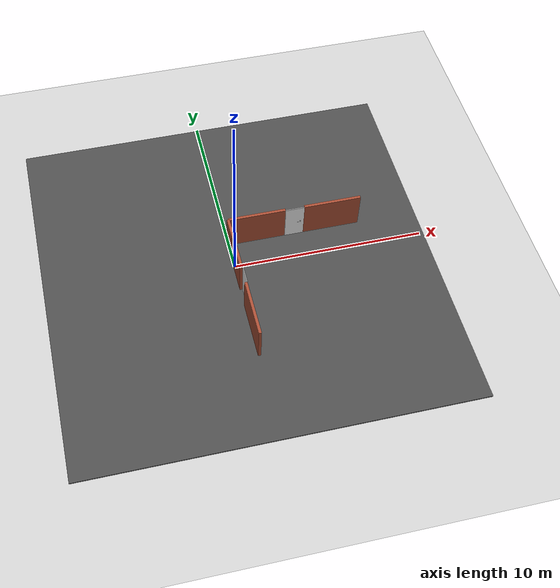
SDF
<sdf version='1.7'>
  <world name='default'>
    <light name='sun' type='directional'>
      <cast_shadows>1</cast_shadows>
      <pose>0 0 10 0 -0 0</pose>
      <diffuse>0.8 0.8 0.8 1</diffuse>
      <specular>0.2 0.2 0.2 1</specular>
      <attenuation>
        <range>1000</range>
        <constant>0.9</constant>
        <linear>0.01</linear>
        <quadratic>0.001</quadratic>
      </attenuation>
      <direction>-0.5 0.1 -0.9</direction>
      <spot>
        <inner_angle>0</inner_angle>
        <outer_angle>0</outer_angle>
        <falloff>0</falloff>
      </spot>
    </light>
    <model name='ground_plane'>
      <static>1</static>
      <link name='link'>
        <collision name='collision'>
          <geometry>
            <plane>
              <normal>0 0 1</normal>
              <size>100 100</size>
            </plane>
          </geometry>
          <surface>
            <contact>
              <collide_bitmask>65535</collide_bitmask>
              <ode/>
            </contact>
            <friction>
              <ode>
                <mu>100</mu>
                <mu2>50</mu2>
              </ode>
              <torsional>
                <ode/>
              </torsional>
            </friction>
            <bounce/>
          </surface>
          <max_contacts>10</max_contacts>
        </collision>
        <visual name='visual'>
          <cast_shadows>0</cast_shadows>
          <geometry>
            <plane>
              <normal>0 0 1</normal>
              <size>100 100</size>
            </plane>
          </geometry>
          <material>
            <script>
              <uri>file://media/materials/scripts/gazebo.material</uri>
              <name>Gazebo/Grey</name>
            </script>
          </material>
        </visual>
        <self_collide>0</self_collide>
        <enable_wind>0</enable_wind>
        <kinematic>0</kinematic>
      </link>
    </model>
    <gravity>0 0 -9.8</gravity>
    <magnetic_field>6e-06 2.3e-05 -4.2e-05</magnetic_field>
    <atmosphere type='adiabatic'/>
    <physics type='ode'>
      <max_step_size>0.001</max_step_size>
      <real_time_factor>1</real_time_factor>
      <real_time_update_rate>1000</real_time_update_rate>
    </physics>
    <scene>
      <ambient>0.4 0.4 0.4 1</ambient>
      <background>0.7 0.7 0.7 1</background>
      <shadows>1</shadows>
    </scene>
    <wind/>
    <spherical_coordinates>
      <surface_model>EARTH_WGS84</surface_model>
      <latitude_deg>0</latitude_deg>
      <longitude_deg>0</longitude_deg>
      <elevation>0</elevation>
      <heading_deg>0</heading_deg>
    </spherical_coordinates>
    <model name='asphalt_plane'>
      <static>1</static>
      <link name='link'>
        <collision name='collision'>
          <geometry>
            <box>
              <size>20 20 0.1</size>
            </box>
          </geometry>
          <max_contacts>10</max_contacts>
          <surface>
            <contact>
              <ode/>
            </contact>
            <bounce/>
            <friction>
              <torsional>
                <ode/>
              </torsional>
              <ode/>
            </friction>
          </surface>
        </collision>
        <visual name='visual'>
          <cast_shadows>0</cast_shadows>
          <geometry>
            <box>
              <size>20 20 0.1</size>
            </box>
          </geometry>
          <material>
            <script>
              <uri>model://asphalt_plane/materials/scripts</uri>
              <uri>model://asphalt_plane/materials/textures</uri>
              <name>vrc/asphalt</name>
            </script>
          </material>
        </visual>
        <self_collide>0</self_collide>
        <enable_wind>0</enable_wind>
        <kinematic>0</kinematic>
      </link>
      <pose>0.19709 -0.087615 0 0 -0 0</pose>
    </model>
    <gui fullscreen='0'>
      <camera name='user_camera'>
        <pose>0.503621 -13.69 8.1002 0 0.791312 1.61822</pose>
        <view_controller>orbit</view_controller>
        <projection_type>perspective</projection_type>
      </camera>
    </gui>
    <model name='aruco_visual_marker_7_pad'>
      <frame name='aruco_visual_marker_7::__model__' attached_to='aruco_visual_marker_7::marker'>
        <pose relative_to='__model__'>0 0 0 0 -0 0</pose>
      </frame>
      <link name='aruco_visual_marker_7::marker'>
        <pose relative_to='aruco_visual_marker_7::__model__'>0 0 0 0 -0 0</pose>
        <visual name='visual'>
          <geometry>
            <box>
              <size>0.1778 0.1778 1e-05</size>
            </box>
          </geometry>
          <material>
            <script>
              <uri>model://aruco_visual_marker_7/materials/scripts</uri>
              <uri>model://aruco_visual_marker_7/materials/textures</uri>
              <name>ArucoVisualMarker7/Marker</name>
            </script>
            <ambient>1 1 1 1</ambient>
            <diffuse>1 1 1 1</diffuse>
            <specular>0 0 0 1</specular>
            <emissive>1 1 1 0</emissive>
            <shader type='vertex'>
              <normal_map>__default__</normal_map>
            </shader>
          </material>
          <pose>0 0 0 0 -0 0</pose>
          <cast_shadows>1</cast_shadows>
          <transparency>0</transparency>
        </visual>
        <collision name='collision'>
          <laser_retro>0</laser_retro>
          <max_contacts>10</max_contacts>
          <pose>0 0 0 0 -0 0</pose>
          <geometry>
            <box>
              <size>0.1778 0.1778 1e-05</size>
            </box>
          </geometry>
          <surface>
            <contact>
              <ode/>
            </contact>
            <bounce/>
            <friction>
              <torsional>
                <ode/>
              </torsional>
              <ode/>
            </friction>
          </surface>
        </collision>
        <self_collide>0</self_collide>
        <enable_wind>0</enable_wind>
        <kinematic>0</kinematic>
      </link>
      <link name='aruco_visual_marker_7::marker_pad'>
        <pose relative_to='aruco_visual_marker_7::marker'>0 0 -0.001 0 -0 0</pose>
        <visual name='visual'>
          <geometry>
            <box>
              <size>0.1778 0.1778 1e-05</size>
            </box>
          </geometry>
          <material>
            <lighting>1</lighting>
            <script>
              <uri>file://media/materials/scripts/gazebo.material</uri>
              <name>Gazebo/White</name>
            </script>
            <ambient>0.3 0.3 0.3 1</ambient>
            <diffuse>0.7 0.7 0.7 1</diffuse>
            <specular>0.01 0.01 0.01 1</specular>
            <emissive>1 1 1 0</emissive>
            <shader type='vertex'>
              <normal_map>__default__</normal_map>
            </shader>
          </material>
          <cast_shadows>1</cast_shadows>
          <transparency>0</transparency>
        </visual>
        <collision name='collision'>
          <laser_retro>0</laser_retro>
          <max_contacts>10</max_contacts>
          <pose>0 0 0 0 -0 0</pose>
          <geometry>
            <box>
              <size>0.1778 0.1778 1e-05</size>
            </box>
          </geometry>
          <surface>
            <contact>
              <ode/>
            </contact>
            <bounce/>
            <friction>
              <torsional>
                <ode/>
              </torsional>
              <ode/>
            </friction>
          </surface>
        </collision>
        <self_collide>0</self_collide>
        <enable_wind>0</enable_wind>
        <kinematic>0</kinematic>
      </link>
      <joint name='aruco_visual_marker_7::marker_JOINT_marker_pad' type='revolute'>
        <parent>aruco_visual_marker_7::marker</parent>
        <child>aruco_visual_marker_7::marker_pad</child>
        <pose>0 0 0 0 -0 0</pose>
        <axis>
          <xyz>0 0 1</xyz>
          <limit>
            <upper>0</upper>
            <lower>0</lower>
          </limit>
          <dynamics>
            <spring_reference>0</spring_reference>
            <spring_stiffness>0</spring_stiffness>
          </dynamics>
        </axis>
      </joint>
      <static>1</static>
      <allow_auto_disable>1</allow_auto_disable>
      <link name='marker_pad_large'>
        <pose relative_to='aruco_visual_marker_7::marker'>-0.035 0 -0.001 0 -0 0</pose>
        <visual name='visual'>
          <geometry>
            <box>
              <size>0.297 0.21 1e-05</size>
            </box>
          </geometry>
          <material>
            <lighting>1</lighting>
            <script>
              <uri>file://media/materials/scripts/gazebo.material</uri>
              <name>Gazebo/White</name>
            </script>
            <ambient>0.3 0.3 0.3 1</ambient>
            <diffuse>0.7 0.7 0.7 1</diffuse>
            <specular>0.01 0.01 0.01 1</specular>
            <emissive>1 1 1 0</emissive>
            <shader type='vertex'>
              <normal_map>__default__</normal_map>
            </shader>
          </material>
          <cast_shadows>1</cast_shadows>
          <transparency>0</transparency>
        </visual>
        <collision name='collision'>
          <laser_retro>0</laser_retro>
          <max_contacts>10</max_contacts>
          <pose>0 0 0 0 -0 0</pose>
          <geometry>
            <box>
              <size>0.297 0.21 1e-05</size>
            </box>
          </geometry>
          <surface>
            <friction>
              <ode>
                <mu>1</mu>
                <mu2>1</mu2>
                <fdir1>0 0 0</fdir1>
                <slip1>0</slip1>
                <slip2>0</slip2>
              </ode>
              <torsional>
                <coefficient>1</coefficient>
                <patch_radius>0</patch_radius>
                <surface_radius>0</surface_radius>
                <use_patch_radius>1</use_patch_radius>
                <ode>
                  <slip>0</slip>
                </ode>
              </torsional>
            </friction>
            <bounce>
              <restitution_coefficient>0</restitution_coefficient>
              <threshold>1e+06</threshold>
            </bounce>
            <contact>
              <collide_without_contact>0</collide_without_contact>
              <collide_without_contact_bitmask>1</collide_without_contact_bitmask>
              <collide_bitmask>1</collide_bitmask>
              <ode>
                <soft_cfm>0</soft_cfm>
                <soft_erp>0.2</soft_erp>
                <kp>1e+13</kp>
                <kd>1</kd>
                <max_vel>0.01</max_vel>
                <min_depth>0</min_depth>
              </ode>
              <bullet>
                <split_impulse>1</split_impulse>
                <split_impulse_penetration_threshold>-0.01</split_impulse_penetration_threshold>
                <soft_cfm>0</soft_cfm>
                <soft_erp>0.2</soft_erp>
                <kp>1e+13</kp>
                <kd>1</kd>
              </bullet>
            </contact>
          </surface>
        </collision>
        <self_collide>0</self_collide>
        <enable_wind>0</enable_wind>
        <kinematic>0</kinematic>
      </link>
      <link name='marker_num'>
        <pose relative_to='marker_pad_large'>-0.14 0 1e-05 0 -0 0</pose>
        <visual name='visual'>
          <geometry>
            <box>
              <size>0.05 0.05 1e-05</size>
            </box>
          </geometry>
          <material>
            <script>
              <uri>model://aruco_visual_marker_7_pad/materials/scripts</uri>
              <uri>model://aruco_visual_marker_7_pad/materials/textures</uri>
              <name>ArucoVisualMarker7/Num</name>
            </script>
            <ambient>1 1 1 1</ambient>
            <diffuse>1 1 1 1</diffuse>
            <specular>0 0 0 1</specular>
            <emissive>1 1 1 0</emissive>
            <shader type='vertex'>
              <normal_map>__default__</normal_map>
            </shader>
          </material>
          <pose>0 0 0 0 -0 0</pose>
          <cast_shadows>1</cast_shadows>
          <transparency>0</transparency>
        </visual>
        <collision name='collision'>
          <laser_retro>0</laser_retro>
          <max_contacts>10</max_contacts>
          <pose>0 0 0 0 -0 0</pose>
          <geometry>
            <box>
              <size>0.05 0.05 1e-05</size>
            </box>
          </geometry>
          <surface>
            <friction>
              <ode>
                <mu>1</mu>
                <mu2>1</mu2>
                <fdir1>0 0 0</fdir1>
                <slip1>0</slip1>
                <slip2>0</slip2>
              </ode>
              <torsional>
                <coefficient>1</coefficient>
                <patch_radius>0</patch_radius>
                <surface_radius>0</surface_radius>
                <use_patch_radius>1</use_patch_radius>
                <ode>
                  <slip>0</slip>
                </ode>
              </torsional>
            </friction>
            <bounce>
              <restitution_coefficient>0</restitution_coefficient>
              <threshold>1e+06</threshold>
            </bounce>
            <contact>
              <collide_without_contact>0</collide_without_contact>
              <collide_without_contact_bitmask>1</collide_without_contact_bitmask>
              <collide_bitmask>1</collide_bitmask>
              <ode>
                <soft_cfm>0</soft_cfm>
                <soft_erp>0.2</soft_erp>
                <kp>1e+13</kp>
                <kd>1</kd>
                <max_vel>0.01</max_vel>
                <min_depth>0</min_depth>
              </ode>
              <bullet>
                <split_impulse>1</split_impulse>
                <split_impulse_penetration_threshold>-0.01</split_impulse_penetration_threshold>
                <soft_cfm>0</soft_cfm>
                <soft_erp>0.2</soft_erp>
                <kp>1e+13</kp>
                <kd>1</kd>
              </bullet>
            </contact>
          </surface>
        </collision>
        <self_collide>0</self_collide>
        <enable_wind>0</enable_wind>
        <kinematic>0</kinematic>
      </link>
      <joint name='marker_JOINT_marker_pad_large' type='revolute'>
        <parent>aruco_visual_marker_7::marker</parent>
        <child>marker_pad_large</child>
        <axis>
          <xyz>0 0 1</xyz>
          <limit>
            <upper>0</upper>
            <lower>0</lower>
          </limit>
          <dynamics>
            <spring_reference>0</spring_reference>
            <spring_stiffness>0</spring_stiffness>
          </dynamics>
        </axis>
      </joint>
      <joint name='pad_large_JOINT_marker_num' type='revolute'>
        <parent>marker_pad_large</parent>
        <child>marker_num</child>
        <axis>
          <xyz>0 0 1</xyz>
          <limit>
            <upper>0</upper>
            <lower>0</lower>
          </limit>
          <dynamics>
            <spring_reference>0</spring_reference>
            <spring_stiffness>0</spring_stiffness>
          </dynamics>
        </axis>
      </joint>
      <static>1</static>
      <allow_auto_disable>1</allow_auto_disable>
      <pose>-0.321947 2.14777 0 0 -0 0</pose>
    </model>
    <model name='aruco_visual_marker_6_pad'>
      <frame name='aruco_visual_marker_6::__model__' attached_to='aruco_visual_marker_6::marker'>
        <pose relative_to='__model__'>0 0 0 0 -0 0</pose>
      </frame>
      <link name='aruco_visual_marker_6::marker'>
        <pose relative_to='aruco_visual_marker_6::__model__'>0 0 0 0 -0 0</pose>
        <visual name='visual'>
          <geometry>
            <box>
              <size>0.1778 0.1778 1e-05</size>
            </box>
          </geometry>
          <material>
            <script>
              <uri>model://aruco_visual_marker_6/materials/scripts</uri>
              <uri>model://aruco_visual_marker_6/materials/textures</uri>
              <name>ArucoVisualMarker6/Marker</name>
            </script>
            <ambient>1 1 1 1</ambient>
            <diffuse>1 1 1 1</diffuse>
            <specular>0 0 0 1</specular>
            <emissive>1 1 1 0</emissive>
            <shader type='vertex'>
              <normal_map>__default__</normal_map>
            </shader>
          </material>
          <pose>0 0 0 0 -0 0</pose>
          <cast_shadows>1</cast_shadows>
          <transparency>0</transparency>
        </visual>
        <collision name='collision'>
          <laser_retro>0</laser_retro>
          <max_contacts>10</max_contacts>
          <pose>0 0 0 0 -0 0</pose>
          <geometry>
            <box>
              <size>0.1778 0.1778 1e-05</size>
            </box>
          </geometry>
          <surface>
            <contact>
              <ode/>
            </contact>
            <bounce/>
            <friction>
              <torsional>
                <ode/>
              </torsional>
              <ode/>
            </friction>
          </surface>
        </collision>
        <self_collide>0</self_collide>
        <enable_wind>0</enable_wind>
        <kinematic>0</kinematic>
      </link>
      <link name='aruco_visual_marker_6::marker_pad'>
        <pose relative_to='aruco_visual_marker_6::marker'>0 0 -0.001 0 -0 0</pose>
        <visual name='visual'>
          <geometry>
            <box>
              <size>0.1778 0.1778 1e-05</size>
            </box>
          </geometry>
          <material>
            <lighting>1</lighting>
            <script>
              <uri>file://media/materials/scripts/gazebo.material</uri>
              <name>Gazebo/White</name>
            </script>
            <ambient>0.3 0.3 0.3 1</ambient>
            <diffuse>0.7 0.7 0.7 1</diffuse>
            <specular>0.01 0.01 0.01 1</specular>
            <emissive>1 1 1 0</emissive>
            <shader type='vertex'>
              <normal_map>__default__</normal_map>
            </shader>
          </material>
          <cast_shadows>1</cast_shadows>
          <transparency>0</transparency>
        </visual>
        <collision name='collision'>
          <laser_retro>0</laser_retro>
          <max_contacts>10</max_contacts>
          <pose>0 0 0 0 -0 0</pose>
          <geometry>
            <box>
              <size>0.1778 0.1778 1e-05</size>
            </box>
          </geometry>
          <surface>
            <contact>
              <ode/>
            </contact>
            <bounce/>
            <friction>
              <torsional>
                <ode/>
              </torsional>
              <ode/>
            </friction>
          </surface>
        </collision>
        <self_collide>0</self_collide>
        <enable_wind>0</enable_wind>
        <kinematic>0</kinematic>
      </link>
      <joint name='aruco_visual_marker_6::marker_JOINT_marker_pad' type='revolute'>
        <parent>aruco_visual_marker_6::marker</parent>
        <child>aruco_visual_marker_6::marker_pad</child>
        <pose>0 0 0 0 -0 0</pose>
        <axis>
          <xyz>0 0 1</xyz>
          <limit>
            <upper>0</upper>
            <lower>0</lower>
          </limit>
          <dynamics>
            <spring_reference>0</spring_reference>
            <spring_stiffness>0</spring_stiffness>
          </dynamics>
        </axis>
      </joint>
      <static>1</static>
      <allow_auto_disable>1</allow_auto_disable>
      <link name='marker_pad_large'>
        <pose relative_to='aruco_visual_marker_6::marker'>-0.035 0 -0.001 0 -0 0</pose>
        <visual name='visual'>
          <geometry>
            <box>
              <size>0.297 0.21 1e-05</size>
            </box>
          </geometry>
          <material>
            <lighting>1</lighting>
            <script>
              <uri>file://media/materials/scripts/gazebo.material</uri>
              <name>Gazebo/White</name>
            </script>
            <ambient>0.3 0.3 0.3 1</ambient>
            <diffuse>0.7 0.7 0.7 1</diffuse>
            <specular>0.01 0.01 0.01 1</specular>
            <emissive>1 1 1 0</emissive>
            <shader type='vertex'>
              <normal_map>__default__</normal_map>
            </shader>
          </material>
          <cast_shadows>1</cast_shadows>
          <transparency>0</transparency>
        </visual>
        <collision name='collision'>
          <laser_retro>0</laser_retro>
          <max_contacts>10</max_contacts>
          <pose>0 0 0 0 -0 0</pose>
          <geometry>
            <box>
              <size>0.297 0.21 1e-05</size>
            </box>
          </geometry>
          <surface>
            <friction>
              <ode>
                <mu>1</mu>
                <mu2>1</mu2>
                <fdir1>0 0 0</fdir1>
                <slip1>0</slip1>
                <slip2>0</slip2>
              </ode>
              <torsional>
                <coefficient>1</coefficient>
                <patch_radius>0</patch_radius>
                <surface_radius>0</surface_radius>
                <use_patch_radius>1</use_patch_radius>
                <ode>
                  <slip>0</slip>
                </ode>
              </torsional>
            </friction>
            <bounce>
              <restitution_coefficient>0</restitution_coefficient>
              <threshold>1e+06</threshold>
            </bounce>
            <contact>
              <collide_without_contact>0</collide_without_contact>
              <collide_without_contact_bitmask>1</collide_without_contact_bitmask>
              <collide_bitmask>1</collide_bitmask>
              <ode>
                <soft_cfm>0</soft_cfm>
                <soft_erp>0.2</soft_erp>
                <kp>1e+13</kp>
                <kd>1</kd>
                <max_vel>0.01</max_vel>
                <min_depth>0</min_depth>
              </ode>
              <bullet>
                <split_impulse>1</split_impulse>
                <split_impulse_penetration_threshold>-0.01</split_impulse_penetration_threshold>
                <soft_cfm>0</soft_cfm>
                <soft_erp>0.2</soft_erp>
                <kp>1e+13</kp>
                <kd>1</kd>
              </bullet>
            </contact>
          </surface>
        </collision>
        <self_collide>0</self_collide>
        <enable_wind>0</enable_wind>
        <kinematic>0</kinematic>
      </link>
      <link name='marker_num'>
        <pose relative_to='marker_pad_large'>-0.14 0 1e-05 0 -0 0</pose>
        <visual name='visual'>
          <geometry>
            <box>
              <size>0.05 0.05 1e-05</size>
            </box>
          </geometry>
          <material>
            <script>
              <uri>model://aruco_visual_marker_6_pad/materials/scripts</uri>
              <uri>model://aruco_visual_marker_6_pad/materials/textures</uri>
              <name>ArucoVisualMarker6/Num</name>
            </script>
            <ambient>1 1 1 1</ambient>
            <diffuse>1 1 1 1</diffuse>
            <specular>0 0 0 1</specular>
            <emissive>1 1 1 0</emissive>
            <shader type='vertex'>
              <normal_map>__default__</normal_map>
            </shader>
          </material>
          <pose>0 0 0 0 -0 0</pose>
          <cast_shadows>1</cast_shadows>
          <transparency>0</transparency>
        </visual>
        <collision name='collision'>
          <laser_retro>0</laser_retro>
          <max_contacts>10</max_contacts>
          <pose>0 0 0 0 -0 0</pose>
          <geometry>
            <box>
              <size>0.05 0.05 1e-05</size>
            </box>
          </geometry>
          <surface>
            <friction>
              <ode>
                <mu>1</mu>
                <mu2>1</mu2>
                <fdir1>0 0 0</fdir1>
                <slip1>0</slip1>
                <slip2>0</slip2>
              </ode>
              <torsional>
                <coefficient>1</coefficient>
                <patch_radius>0</patch_radius>
                <surface_radius>0</surface_radius>
                <use_patch_radius>1</use_patch_radius>
                <ode>
                  <slip>0</slip>
                </ode>
              </torsional>
            </friction>
            <bounce>
              <restitution_coefficient>0</restitution_coefficient>
              <threshold>1e+06</threshold>
            </bounce>
            <contact>
              <collide_without_contact>0</collide_without_contact>
              <collide_without_contact_bitmask>1</collide_without_contact_bitmask>
              <collide_bitmask>1</collide_bitmask>
              <ode>
                <soft_cfm>0</soft_cfm>
                <soft_erp>0.2</soft_erp>
                <kp>1e+13</kp>
                <kd>1</kd>
                <max_vel>0.01</max_vel>
                <min_depth>0</min_depth>
              </ode>
              <bullet>
                <split_impulse>1</split_impulse>
                <split_impulse_penetration_threshold>-0.01</split_impulse_penetration_threshold>
                <soft_cfm>0</soft_cfm>
                <soft_erp>0.2</soft_erp>
                <kp>1e+13</kp>
                <kd>1</kd>
              </bullet>
            </contact>
          </surface>
        </collision>
        <self_collide>0</self_collide>
        <enable_wind>0</enable_wind>
        <kinematic>0</kinematic>
      </link>
      <joint name='marker_JOINT_marker_pad_large' type='revolute'>
        <parent>aruco_visual_marker_6::marker</parent>
        <child>marker_pad_large</child>
        <axis>
          <xyz>0 0 1</xyz>
          <limit>
            <upper>0</upper>
            <lower>0</lower>
          </limit>
          <dynamics>
            <spring_reference>0</spring_reference>
            <spring_stiffness>0</spring_stiffness>
          </dynamics>
        </axis>
      </joint>
      <joint name='pad_large_JOINT_marker_num' type='revolute'>
        <parent>marker_pad_large</parent>
        <child>marker_num</child>
        <axis>
          <xyz>0 0 1</xyz>
          <limit>
            <upper>0</upper>
            <lower>0</lower>
          </limit>
          <dynamics>
            <spring_reference>0</spring_reference>
            <spring_stiffness>0</spring_stiffness>
          </dynamics>
        </axis>
      </joint>
      <static>1</static>
      <allow_auto_disable>1</allow_auto_disable>
      <pose>-0.03437 2.16572 0 0 -0 0</pose>
    </model>
    <model name='door_open_counter_clockwise'>
      <pose relative_to="ground_plane">0 0 1.05 0 0 1.57</pose>
      <static>0</static>
      <model name="door_wall_model">
        <static>1</static>
        <allow_auto_disable>0</allow_auto_disable>
        <self_collide>0</self_collide>
        <link name="door_mount">
          <pose>0 0 0 0 0 0</pose>
          <gravity>1</gravity>
          <self_collide>0</self_collide>
          <kinematic>0</kinematic>
          <enable_wind>0</enable_wind>
          <visual name="visual">
            <geometry>
              <box>
                <size>3 0.15 2</size>
              </box>
            </geometry>
            <material>
              <lighting>1</lighting>
              <script>
                <uri>file://media/materials/scripts/gazebo.material</uri>
                <name>Gazebo/Bricks</name>
              </script>
              <shader type='pixel'>
                <normal_map>__default__</normal_map>
              </shader>
            </material>
            <transparency>0</transparency>
            <cast_shadows>1</cast_shadows>
          </visual>
          <collision name="collision">
            <geometry>
              <box>
                <size>3 1 2</size>
              </box>
            </geometry>
          </collision>
          <inertial>
            <mass>100</mass>
            <inertia>
              <ixx>0.145833</ixx>
              <ixy>0</ixy>
              <ixz>0</ixz>
              <iyy>0.145833</iyy>
              <iyz>0</iyz>
              <izz>0.125</izz>
            </inertia>
            <pose>0 0 0 0 -0 0</pose>
          </inertial>
        </link>
        <link name="door_wall">
          <pose relative_to="door_mount">-4.010 0 0 0 0 0</pose>
          <gravity>1</gravity>
          <self_collide>0</self_collide>
          <kinematic>0</kinematic>
          <enable_wind>0</enable_wind>
          <visual name="visual">
            <geometry>
              <box>
                <size>3 0.15 2</size>
              </box>
            </geometry>
            <material>
              <lighting>1</lighting>
              <script>
                <uri>file://media/materials/scripts/gazebo.material</uri>
                <name>Gazebo/Bricks</name>
              </script>
              <shader type='pixel'>
                <normal_map>__default__</normal_map>
              </shader>
            </material>
            <transparency>0</transparency>
            <cast_shadows>1</cast_shadows>
          </visual>
          <collision name="collision">
            <geometry>
              <box>
                <size>3 1 2</size>
              </box>
            </geometry>
          </collision>
          <inertial>
            <mass>100</mass>
            <inertia>
              <ixx>0.145833</ixx>
              <ixy>0</ixy>
              <ixz>0</ixz>
              <iyy>0.145833</iyy>
              <iyz>0</iyz>
              <izz>0.125</izz>
            </inertia>
            <pose>0 0 0 0 -0 0</pose>
          </inertial>
        </link>
        <joint name='doormount_doorwall_JOINT' type='fixed'>
          <parent>door_mount</parent>
          <child>door_wall</child>
          <pose>0 0 0 0 -0 0</pose>
          <axis>0 0 1</axis>
        </joint>
      </model>
      <model name="door_model">
        <static>0</static>
        <allow_auto_disable>0</allow_auto_disable>
        <self_collide>0</self_collide>
        <link name="door">
          <pose>-2.005 -0.075 0.01 0 0 0</pose>
          <gravity>1</gravity>
          <self_collide>0</self_collide>
          <kinematic>0</kinematic>
          <enable_wind>0</enable_wind>
          <visual name="visual">
            <geometry>
              <box>
                <size>1 0.03 2</size>
              </box>
            </geometry>
            <material>
              <lighting>1</lighting>
              <script>
                <uri>file://media/materials/scripts/gazebo.material</uri>
                <name>Gazebo/White</name>
              </script>
              <shader type='pixel'>
                <normal_map>__default__</normal_map>
              </shader>
            </material>
            <transparency>0</transparency>
            <cast_shadows>1</cast_shadows>
          </visual>
          <collision name="collision">
            <geometry>
              <box>
                <size>1 0.03 2</size>
              </box>
            </geometry>
          </collision>
          <inertial>
            <mass>15</mass>
            <inertia>
              <ixx>0.145833</ixx>
              <ixy>0</ixy>
              <ixz>0</ixz>
              <iyy>0.145833</iyy>
              <iyz>0</iyz>
              <izz>0.125</izz>
            </inertia>
            <pose>0 0 0 0 -0 0</pose>
          </inertial>
        </link>
        <link name='handle_rotation'>
          <inertial>
            <mass>0.5</mass>
            <inertia>
              <ixx>0.145833</ixx>
              <ixy>0</ixy>
              <ixz>0</ixz>
              <iyy>0.145833</iyy>
              <iyz>0</iyz>
              <izz>0.125</izz>
            </inertia>
            <pose>0 0 0 0 1.5707 0</pose>
          </inertial>
          <pose relative_to="handle_backplate">0 0 0 0 0 0</pose>
          <gravity>1</gravity>
          <self_collide>0</self_collide>
          <kinematic>0</kinematic>
          <enable_wind>0</enable_wind>
          <visual name='visual'>
            <pose>0 0 0 0 -0 0</pose>
            <geometry>
              <cylinder>
                <radius>0.01</radius>
                <length>0.13</length>
              </cylinder>
            </geometry>
            <material>
              <lighting>1</lighting>
              <script>
                <uri>file://media/materials/scripts/gazebo.material</uri>
                <name>Gazebo/Grey</name>
              </script>
              <shader type='pixel'>
                <normal_map>__default__</normal_map>
              </shader>
              <ambient>0.3 0.3 0.3 1</ambient>
              <diffuse>0.7 0.7 0.7 1</diffuse>
              <specular>0.01 0.01 0.01 1</specular>
              <emissive>0 0 0 1</emissive>
            </material>
            <transparency>0</transparency>
            <cast_shadows>1</cast_shadows>
          </visual>
          <collision name='collision'>
            <laser_retro>0</laser_retro>
            <max_contacts>10</max_contacts>
            <pose>0 0 0 0 -0 0</pose>
            <geometry>
              <cylinder>
                <radius>0.01</radius>
                <length>0.05</length>
              </cylinder>
            </geometry>
            <surface>
              <friction>
                <ode>
                  <mu>1</mu>
                  <mu2>1</mu2>
                  <fdir1>0 0 0</fdir1>
                  <slip1>0</slip1>
                  <slip2>0</slip2>
                </ode>
                <torsional>
                  <coefficient>1</coefficient>
                  <patch_radius>0</patch_radius>
                  <surface_radius>0</surface_radius>
                  <use_patch_radius>1</use_patch_radius>
                  <ode>
                    <slip>0</slip>
                  </ode>
                </torsional>
              </friction>
              <bounce>
                <restitution_coefficient>0</restitution_coefficient>
                <threshold>1e+06</threshold>
              </bounce>
              <contact>
                <collide_without_contact>0</collide_without_contact>
                <collide_without_contact_bitmask>1</collide_without_contact_bitmask>
                <collide_bitmask>1</collide_bitmask>
                <ode>
                  <soft_cfm>0</soft_cfm>
                  <soft_erp>0.2</soft_erp>
                  <kp>1e+13</kp>
                  <kd>1</kd>
                  <max_vel>0.01</max_vel>
                  <min_depth>0</min_depth>
                </ode>
                <bullet>
                  <split_impulse>1</split_impulse>
                  <split_impulse_penetration_threshold>-0.01</split_impulse_penetration_threshold>
                  <soft_cfm>0</soft_cfm>
                  <soft_erp>0.2</soft_erp>
                  <kp>1e+13</kp>
                  <kd>1</kd>
                </bullet>
              </contact>
            </surface>
          </collision>
        </link>
        <link name='handle'>
          <inertial>
            <mass>0.5</mass>
            <inertia>
              <ixx>0.145833</ixx>
              <ixy>0</ixy>
              <ixz>0</ixz>
              <iyy>0.145833</iyy>
              <iyz>0</iyz>
              <izz>0.125</izz>
            </inertia>
            <pose>0 0 0 0 -0 0</pose>
          </inertial>
          <pose relative_to="handle_rotation">0.08 0 0.07 0 1.5707 0</pose>
          <gravity>1</gravity>
          <self_collide>0</self_collide>
          <kinematic>0</kinematic>
          <enable_wind>0</enable_wind>
          <visual name='visual'>
            <pose>0 0 0 0 -0 0</pose>
            <geometry>
              <cylinder>
                <radius>0.01</radius>
                <length>0.18</length>
              </cylinder>
            </geometry>
            <material>
              <lighting>1</lighting>
              <script>
                <uri>file://media/materials/scripts/gazebo.material</uri>
                <name>Gazebo/Grey</name>
              </script>
              <shader type='pixel'>
                <normal_map>__default__</normal_map>
              </shader>
              <ambient>0.3 0.3 0.3 1</ambient>
              <diffuse>0.7 0.7 0.7 1</diffuse>
              <specular>0.01 0.01 0.01 1</specular>
              <emissive>0 0 0 1</emissive>
            </material>
            <transparency>0</transparency>
            <cast_shadows>1</cast_shadows>
          </visual>
          <collision name='collision'>
            <laser_retro>0</laser_retro>
            <max_contacts>10</max_contacts>
            <pose>0 0 0 0 -0 0</pose>
            <geometry>
              <cylinder>
                <radius>0.01</radius>
                <length>0.18</length>
              </cylinder>
            </geometry>
            <surface>
              <friction>
                <ode>
                  <mu>1</mu>
                  <mu2>1</mu2>
                  <fdir1>0 0 0</fdir1>
                  <slip1>0</slip1>
                  <slip2>0</slip2>
                </ode>
                <torsional>
                  <coefficient>1</coefficient>
                  <patch_radius>0</patch_radius>
                  <surface_radius>0</surface_radius>
                  <use_patch_radius>1</use_patch_radius>
                  <ode>
                    <slip>0</slip>
                  </ode>
                </torsional>
              </friction>
              <bounce>
                <restitution_coefficient>0</restitution_coefficient>
                <threshold>1e+06</threshold>
              </bounce>
              <contact>
                <collide_without_contact>0</collide_without_contact>
                <collide_without_contact_bitmask>1</collide_without_contact_bitmask>
                <collide_bitmask>1</collide_bitmask>
                <ode>
                  <soft_cfm>0</soft_cfm>
                  <soft_erp>0.2</soft_erp>
                  <kp>1e+13</kp>
                  <kd>1</kd>
                  <max_vel>0.01</max_vel>
                  <min_depth>0</min_depth>
                </ode>
                <bullet>
                  <split_impulse>1</split_impulse>
                  <split_impulse_penetration_threshold>-0.01</split_impulse_penetration_threshold>
                  <soft_cfm>0</soft_cfm>
                  <soft_erp>0.2</soft_erp>
                  <kp>1e+13</kp>
                  <kd>1</kd>
                </bullet>
              </contact>
            </surface>
          </collision>
        </link>
        <link name='handle_i'>
          <inertial>
            <mass>0.5</mass>
            <inertia>
              <ixx>0.145833</ixx>
              <ixy>0</ixy>
              <ixz>0</ixz>
              <iyy>0.145833</iyy>
              <iyz>0</iyz>
              <izz>0.125</izz>
            </inertia>
            <pose>0 0 0 0 -0 0</pose>
          </inertial>
          <pose relative_to="handle_rotation">0.08 0 -0.07 0 1.5707 0</pose>
          <gravity>1</gravity>
          <self_collide>0</self_collide>
          <kinematic>0</kinematic>
          <enable_wind>0</enable_wind>
          <visual name='visual'>
            <pose>0 0 0 0 -0 0</pose>
            <geometry>
              <cylinder>
                <radius>0.01</radius>
                <length>0.18</length>
              </cylinder>
            </geometry>
            <material>
              <lighting>1</lighting>
              <script>
                <uri>file://media/materials/scripts/gazebo.material</uri>
                <name>Gazebo/Grey</name>
              </script>
              <shader type='pixel'>
                <normal_map>__default__</normal_map>
              </shader>
              <ambient>0.3 0.3 0.3 1</ambient>
              <diffuse>0.7 0.7 0.7 1</diffuse>
              <specular>0.01 0.01 0.01 1</specular>
              <emissive>0 0 0 1</emissive>
            </material>
            <transparency>0</transparency>
            <cast_shadows>1</cast_shadows>
          </visual>
          <collision name='collision'>
            <laser_retro>0</laser_retro>
            <max_contacts>10</max_contacts>
            <pose>0 0 0 0 -0 0</pose>
            <geometry>
              <cylinder>
                <radius>0.01</radius>
                <length>0.18</length>
              </cylinder>
            </geometry>
            <surface>
              <friction>
                <ode>
                  <mu>1</mu>
                  <mu2>1</mu2>
                  <fdir1>0 0 0</fdir1>
                  <slip1>0</slip1>
                  <slip2>0</slip2>
                </ode>
                <torsional>
                  <coefficient>1</coefficient>
                  <patch_radius>0</patch_radius>
                  <surface_radius>0</surface_radius>
                  <use_patch_radius>1</use_patch_radius>
                  <ode>
                    <slip>0</slip>
                  </ode>
                </torsional>
              </friction>
              <bounce>
                <restitution_coefficient>0</restitution_coefficient>
                <threshold>1e+06</threshold>
              </bounce>
              <contact>
                <collide_without_contact>0</collide_without_contact>
                <collide_without_contact_bitmask>1</collide_without_contact_bitmask>
                <collide_bitmask>1</collide_bitmask>
                <ode>
                  <soft_cfm>0</soft_cfm>
                  <soft_erp>0.2</soft_erp>
                  <kp>1e+13</kp>
                  <kd>1</kd>
                  <max_vel>0.01</max_vel>
                  <min_depth>0</min_depth>
                </ode>
                <bullet>
                  <split_impulse>1</split_impulse>
                  <split_impulse_penetration_threshold>-0.01</split_impulse_penetration_threshold>
                  <soft_cfm>0</soft_cfm>
                  <soft_erp>0.2</soft_erp>
                  <kp>1e+13</kp>
                  <kd>1</kd>
                </bullet>
              </contact>
            </surface>
          </collision>
        </link>
        <link name='handle_backplate'>
          <inertial>
            <mass>1</mass>
            <inertia>
              <ixx>0.145833</ixx>
              <ixy>0</ixy>
              <ixz>0</ixz>
              <iyy>0.145833</iyy>
              <iyz>0</iyz>
              <izz>0.125</izz>
            </inertia>
            <pose>0 0 0 0 -0 0</pose>
          </inertial>
          <pose relative_to="door">-0.3 0 0 1.5707 0 0</pose>
          <gravity>1</gravity>
          <self_collide>0</self_collide>
          <kinematic>0</kinematic>
          <enable_wind>0</enable_wind>
          <visual name='visual'>
            <pose>0 0 0 0 -0 0</pose>
            <geometry>
              <cylinder>
                <radius>0.03</radius>
                <length>0.05</length>
              </cylinder>
            </geometry>
            <material>
              <lighting>1</lighting>
              <script>
                <uri>file://media/materials/scripts/gazebo.material</uri>
                <name>Gazebo/Grey</name>
              </script>
              <shader type='pixel'>
                <normal_map>__default__</normal_map>
              </shader>
              <ambient>0.3 0.3 0.3 1</ambient>
              <diffuse>0.7 0.7 0.7 1</diffuse>
              <specular>0.01 0.01 0.01 1</specular>
              <emissive>0 0 0 1</emissive>
            </material>
            <transparency>0</transparency>
            <cast_shadows>1</cast_shadows>
          </visual>
          <collision name='collision'>
            <laser_retro>0</laser_retro>
            <max_contacts>10</max_contacts>
            <pose>0 0 0 0 -0 0</pose>
            <geometry>
              <cylinder>
                <radius>0.03</radius>
                <length>0.01</length>
              </cylinder>
            </geometry>
            <surface>
              <friction>
                <ode>
                  <mu>1</mu>
                  <mu2>1</mu2>
                  <fdir1>0 0 0</fdir1>
                  <slip1>0</slip1>
                  <slip2>0</slip2>
                </ode>
                <torsional>
                  <coefficient>1</coefficient>
                  <patch_radius>0</patch_radius>
                  <surface_radius>0</surface_radius>
                  <use_patch_radius>1</use_patch_radius>
                  <ode>
                    <slip>0</slip>
                  </ode>
                </torsional>
              </friction>
              <bounce>
                <restitution_coefficient>0</restitution_coefficient>
                <threshold>1e+06</threshold>
              </bounce>
              <contact>
                <collide_without_contact>0</collide_without_contact>
                <collide_without_contact_bitmask>1</collide_without_contact_bitmask>
                <collide_bitmask>1</collide_bitmask>
                <ode>
                  <soft_cfm>0</soft_cfm>
                  <soft_erp>0.2</soft_erp>
                  <kp>1e+13</kp>
                  <kd>1</kd>
                  <max_vel>0.01</max_vel>
                  <min_depth>0</min_depth>
                </ode>
                <bullet>
                  <split_impulse>1</split_impulse>
                  <split_impulse_penetration_threshold>-0.01</split_impulse_penetration_threshold>
                  <soft_cfm>0</soft_cfm>
                  <soft_erp>0.2</soft_erp>
                  <kp>1e+13</kp>
                  <kd>1</kd>
                </bullet>
              </contact>
            </surface>
          </collision>
        </link>
        <joint name='handle_handlerotation_JOINT' type='fixed'>
          <parent>handle_rotation</parent>
          <child>handle</child>
          <pose>0 0 0.0 0 -0 0</pose>
          <physics>
            <ode>
              <limit>
                <cfm>0</cfm>
                <erp>0.2</erp>
              </limit>
              <suspension>
                <cfm>0</cfm>
                <erp>0.2</erp>
              </suspension>
            </ode>
          </physics>
        </joint>
        <joint name='handlei_handlerotation_JOINT' type='fixed'>
          <parent>handle_rotation</parent>
          <child>handle_i</child>
          <pose>0 0 0.0 0 -0 0</pose>
          <physics>
            <ode>
              <limit>
                <cfm>0</cfm>
                <erp>0.2</erp>
              </limit>
              <suspension>
                <cfm>0</cfm>
                <erp>0.2</erp>
              </suspension>
            </ode>
          </physics>
        </joint>
        <joint name='handle_backplate_JOINT' type='revolute'>
          <parent>handle_backplate</parent>
          <child>handle_rotation</child>
          <pose>0 0 0.0 0 -0 0</pose>
          <axis>
            <xyz>0 0 1</xyz>
            <limit>
              <lower>-0.44</lower>
              <upper>0</upper>
              <effort>1</effort>
              <velocity>3</velocity>
            </limit>
            <dynamics>
              <spring_reference>0</spring_reference>
              <spring_stiffness>0</spring_stiffness>
              <damping>0</damping>
              <friction>0</friction>
            </dynamics>
          </axis>
          <physics>
            <ode>
              <limit>
                <cfm>0</cfm>
                <erp>0.2</erp>
              </limit>
              <suspension>
                <cfm>0</cfm>
                <erp>0.2</erp>
              </suspension>
            </ode>
          </physics>
        </joint>
        <joint name='door_handle_JOINT' type='fixed'>
          <parent>door</parent>
          <child>handle_backplate</child>
          <pose>0 0 0 0 -0 0</pose>
          <axis>0 0 1</axis>
        </joint>
        <joint name='door_doormount_JOINT' type='revolute'>
          <parent>door_wall_model::door_mount</parent>
          <child>door</child>
          <pose relative_to="door">0.5 0 0 0 0 0</pose>
          <axis>
            <xyz>0 0 1</xyz>
            <limit>
              <lower>-3</lower>
              <upper>0.44</upper>
              <effort>1</effort>
              <velocity>3</velocity>
            </limit>
            <dynamics>
              <spring_reference>0</spring_reference>
              <spring_stiffness>0</spring_stiffness>
              <damping>0</damping>
              <friction>0</friction>
            </dynamics>
          </axis>
          <physics>
            <ode>
              <limit>
                <cfm>0</cfm>
                <erp>0.2</erp>
              </limit>
              <suspension>
                <cfm>0</cfm>
                <erp>0.2</erp>
              </suspension>
            </ode>
          </physics>
        </joint>
      </model>
      <plugin name="handle_plugin" filename="libhandle_plugin.so" />
    </model>
    <model name='door_open_clockwise'>
      <pose relative_to="ground_plane">1.5 1.5 1.05 0 0 0</pose>
      <static>0</static>
      <model name="door_wall_model">
        <static>1</static>
        <allow_auto_disable>0</allow_auto_disable>
        <self_collide>0</self_collide>
        <link name="door_mount">
          <pose>0 0 0 0 0 0</pose>
          <gravity>1</gravity>
          <self_collide>0</self_collide>
          <kinematic>0</kinematic>
          <enable_wind>0</enable_wind>
          <visual name="visual">
            <geometry>
              <box>
                <size>3 0.15 2</size>
              </box>
            </geometry>
            <material>
              <lighting>1</lighting>
              <script>
                <uri>file://media/materials/scripts/gazebo.material</uri>
                <name>Gazebo/Bricks</name>
              </script>
              <shader type='pixel'>
                <normal_map>__default__</normal_map>
              </shader>
            </material>
            <transparency>0</transparency>
            <cast_shadows>1</cast_shadows>
          </visual>
          <collision name="collision">
            <geometry>
              <box>
                <size>3 1 2</size>
              </box>
            </geometry>
          </collision>
          <inertial>
            <mass>100</mass>
            <inertia>
              <ixx>0.145833</ixx>
              <ixy>0</ixy>
              <ixz>0</ixz>
              <iyy>0.145833</iyy>
              <iyz>0</iyz>
              <izz>0.125</izz>
            </inertia>
            <pose>0 0 0 0 -0 0</pose>
          </inertial>
        </link>
        <link name="door_wall">
          <pose relative_to="door_mount">4.010 0 0 0 0 0</pose>
          <gravity>1</gravity>
          <self_collide>0</self_collide>
          <kinematic>0</kinematic>
          <enable_wind>0</enable_wind>
          <visual name="visual">
            <geometry>
              <box>
                <size>3 0.15 2</size>
              </box>
            </geometry>
            <material>
              <lighting>1</lighting>
              <script>
                <uri>file://media/materials/scripts/gazebo.material</uri>
                <name>Gazebo/Bricks</name>
              </script>
              <shader type='pixel'>
                <normal_map>__default__</normal_map>
              </shader>
            </material>
            <transparency>0</transparency>
            <cast_shadows>1</cast_shadows>
          </visual>
          <collision name="collision">
            <geometry>
              <box>
                <size>3 1 2</size>
              </box>
            </geometry>
          </collision>
          <inertial>
            <mass>100</mass>
            <inertia>
              <ixx>0.145833</ixx>
              <ixy>0</ixy>
              <ixz>0</ixz>
              <iyy>0.145833</iyy>
              <iyz>0</iyz>
              <izz>0.125</izz>
            </inertia>
            <pose>0 0 0 0 -0 0</pose>
          </inertial>
        </link>
        <joint name='doormount_doorwall_JOINT' type='fixed'>
          <parent>door_mount</parent>
          <child>door_wall</child>
          <pose>0 0 0 0 -0 0</pose>
          <axis>0 0 1</axis>
        </joint>
      </model>
      <model name="door_model">
        <static>0</static>
        <allow_auto_disable>0</allow_auto_disable>
        <self_collide>0</self_collide>
        <link name="door">
          <pose>2.005 -0.075 0.01 0 0 0</pose>
          <gravity>1</gravity>
          <self_collide>0</self_collide>
          <kinematic>0</kinematic>
          <enable_wind>0</enable_wind>
          <visual name="visual">
            <geometry>
              <box>
                <size>1 0.03 2</size>
              </box>
            </geometry>
            <material>
              <lighting>1</lighting>
              <script>
                <uri>file://media/materials/scripts/gazebo.material</uri>
                <name>Gazebo/White</name>
              </script>
              <shader type='pixel'>
                <normal_map>__default__</normal_map>
              </shader>
            </material>
            <transparency>0</transparency>
            <cast_shadows>1</cast_shadows>
          </visual>
          <collision name="collision">
            <geometry>
              <box>
                <size>1 0.03 2</size>
              </box>
            </geometry>
          </collision>
          <inertial>
            <mass>15</mass>
            <inertia>
              <ixx>0.145833</ixx>
              <ixy>0</ixy>
              <ixz>0</ixz>
              <iyy>0.145833</iyy>
              <iyz>0</iyz>
              <izz>0.125</izz>
            </inertia>
            <pose>0 0 0 0 -0 0</pose>
          </inertial>
        </link>
        <link name='handle_rotation'>
          <inertial>
            <mass>0.5</mass>
            <inertia>
              <ixx>0.145833</ixx>
              <ixy>0</ixy>
              <ixz>0</ixz>
              <iyy>0.145833</iyy>
              <iyz>0</iyz>
              <izz>0.125</izz>
            </inertia>
            <pose>0 0 0 0 1.5707 0</pose>
          </inertial>
          <pose relative_to="handle_backplate">0 0 0 0 0 0</pose>
          <gravity>1</gravity>
          <self_collide>0</self_collide>
          <kinematic>0</kinematic>
          <enable_wind>0</enable_wind>
          <visual name='visual'>
            <pose>0 0 0 0 -0 0</pose>
            <geometry>
              <cylinder>
                <radius>0.01</radius>
                <length>0.13</length>
              </cylinder>
            </geometry>
            <material>
              <lighting>1</lighting>
              <script>
                <uri>file://media/materials/scripts/gazebo.material</uri>
                <name>Gazebo/Grey</name>
              </script>
              <shader type='pixel'>
                <normal_map>__default__</normal_map>
              </shader>
              <ambient>0.3 0.3 0.3 1</ambient>
              <diffuse>0.7 0.7 0.7 1</diffuse>
              <specular>0.01 0.01 0.01 1</specular>
              <emissive>0 0 0 1</emissive>
            </material>
            <transparency>0</transparency>
            <cast_shadows>1</cast_shadows>
          </visual>
          <collision name='collision'>
            <laser_retro>0</laser_retro>
            <max_contacts>10</max_contacts>
            <pose>0 0 0 0 -0 0</pose>
            <geometry>
              <cylinder>
                <radius>0.01</radius>
                <length>0.05</length>
              </cylinder>
            </geometry>
            <surface>
              <friction>
                <ode>
                  <mu>1</mu>
                  <mu2>1</mu2>
                  <fdir1>0 0 0</fdir1>
                  <slip1>0</slip1>
                  <slip2>0</slip2>
                </ode>
                <torsional>
                  <coefficient>1</coefficient>
                  <patch_radius>0</patch_radius>
                  <surface_radius>0</surface_radius>
                  <use_patch_radius>1</use_patch_radius>
                  <ode>
                    <slip>0</slip>
                  </ode>
                </torsional>
              </friction>
              <bounce>
                <restitution_coefficient>0</restitution_coefficient>
                <threshold>1e+06</threshold>
              </bounce>
              <contact>
                <collide_without_contact>0</collide_without_contact>
                <collide_without_contact_bitmask>1</collide_without_contact_bitmask>
                <collide_bitmask>1</collide_bitmask>
                <ode>
                  <soft_cfm>0</soft_cfm>
                  <soft_erp>0.2</soft_erp>
                  <kp>1e+13</kp>
                  <kd>1</kd>
                  <max_vel>0.01</max_vel>
                  <min_depth>0</min_depth>
                </ode>
                <bullet>
                  <split_impulse>1</split_impulse>
                  <split_impulse_penetration_threshold>-0.01</split_impulse_penetration_threshold>
                  <soft_cfm>0</soft_cfm>
                  <soft_erp>0.2</soft_erp>
                  <kp>1e+13</kp>
                  <kd>1</kd>
                </bullet>
              </contact>
            </surface>
          </collision>
        </link>
        <link name='handle'>
          <inertial>
            <mass>0.5</mass>
            <inertia>
              <ixx>0.145833</ixx>
              <ixy>0</ixy>
              <ixz>0</ixz>
              <iyy>0.145833</iyy>
              <iyz>0</iyz>
              <izz>0.125</izz>
            </inertia>
            <pose>0 0 0 0 -0 0</pose>
          </inertial>
          <pose relative_to="handle_rotation">-0.08 0 0.07 0 1.5707 0</pose>
          <gravity>1</gravity>
          <self_collide>0</self_collide>
          <kinematic>0</kinematic>
          <enable_wind>0</enable_wind>
          <visual name='visual'>
            <pose>0 0 0 0 -0 0</pose>
            <geometry>
              <cylinder>
                <radius>0.01</radius>
                <length>0.18</length>
              </cylinder>
            </geometry>
            <material>
              <lighting>1</lighting>
              <script>
                <uri>file://media/materials/scripts/gazebo.material</uri>
                <name>Gazebo/Grey</name>
              </script>
              <shader type='pixel'>
                <normal_map>__default__</normal_map>
              </shader>
              <ambient>0.3 0.3 0.3 1</ambient>
              <diffuse>0.7 0.7 0.7 1</diffuse>
              <specular>0.01 0.01 0.01 1</specular>
              <emissive>0 0 0 1</emissive>
            </material>
            <transparency>0</transparency>
            <cast_shadows>1</cast_shadows>
          </visual>
          <collision name='collision'>
            <laser_retro>0</laser_retro>
            <max_contacts>10</max_contacts>
            <pose>0 0 0 0 -0 0</pose>
            <geometry>
              <cylinder>
                <radius>0.01</radius>
                <length>0.18</length>
              </cylinder>
            </geometry>
            <surface>
              <friction>
                <ode>
                  <mu>1</mu>
                  <mu2>1</mu2>
                  <fdir1>0 0 0</fdir1>
                  <slip1>0</slip1>
                  <slip2>0</slip2>
                </ode>
                <torsional>
                  <coefficient>1</coefficient>
                  <patch_radius>0</patch_radius>
                  <surface_radius>0</surface_radius>
                  <use_patch_radius>1</use_patch_radius>
                  <ode>
                    <slip>0</slip>
                  </ode>
                </torsional>
              </friction>
              <bounce>
                <restitution_coefficient>0</restitution_coefficient>
                <threshold>1e+06</threshold>
              </bounce>
              <contact>
                <collide_without_contact>0</collide_without_contact>
                <collide_without_contact_bitmask>1</collide_without_contact_bitmask>
                <collide_bitmask>1</collide_bitmask>
                <ode>
                  <soft_cfm>0</soft_cfm>
                  <soft_erp>0.2</soft_erp>
                  <kp>1e+13</kp>
                  <kd>1</kd>
                  <max_vel>0.01</max_vel>
                  <min_depth>0</min_depth>
                </ode>
                <bullet>
                  <split_impulse>1</split_impulse>
                  <split_impulse_penetration_threshold>-0.01</split_impulse_penetration_threshold>
                  <soft_cfm>0</soft_cfm>
                  <soft_erp>0.2</soft_erp>
                  <kp>1e+13</kp>
                  <kd>1</kd>
                </bullet>
              </contact>
            </surface>
          </collision>
        </link>
        <link name='handle_i'>
          <inertial>
            <mass>0.5</mass>
            <inertia>
              <ixx>0.145833</ixx>
              <ixy>0</ixy>
              <ixz>0</ixz>
              <iyy>0.145833</iyy>
              <iyz>0</iyz>
              <izz>0.125</izz>
            </inertia>
            <pose>0 0 0 0 -0 0</pose>
          </inertial>
          <pose relative_to="handle_rotation">-0.08 0 -0.07 0 1.5707 0</pose>
          <gravity>1</gravity>
          <self_collide>0</self_collide>
          <kinematic>0</kinematic>
          <enable_wind>0</enable_wind>
          <visual name='visual'>
            <pose>0 0 0 0 -0 0</pose>
            <geometry>
              <cylinder>
                <radius>0.01</radius>
                <length>0.18</length>
              </cylinder>
            </geometry>
            <material>
              <lighting>1</lighting>
              <script>
                <uri>file://media/materials/scripts/gazebo.material</uri>
                <name>Gazebo/Grey</name>
              </script>
              <shader type='pixel'>
                <normal_map>__default__</normal_map>
              </shader>
              <ambient>0.3 0.3 0.3 1</ambient>
              <diffuse>0.7 0.7 0.7 1</diffuse>
              <specular>0.01 0.01 0.01 1</specular>
              <emissive>0 0 0 1</emissive>
            </material>
            <transparency>0</transparency>
            <cast_shadows>1</cast_shadows>
          </visual>
          <collision name='collision'>
            <laser_retro>0</laser_retro>
            <max_contacts>10</max_contacts>
            <pose>0 0 0 0 -0 0</pose>
            <geometry>
              <cylinder>
                <radius>0.01</radius>
                <length>0.18</length>
              </cylinder>
            </geometry>
            <surface>
              <friction>
                <ode>
                  <mu>1</mu>
                  <mu2>1</mu2>
                  <fdir1>0 0 0</fdir1>
                  <slip1>0</slip1>
                  <slip2>0</slip2>
                </ode>
                <torsional>
                  <coefficient>1</coefficient>
                  <patch_radius>0</patch_radius>
                  <surface_radius>0</surface_radius>
                  <use_patch_radius>1</use_patch_radius>
                  <ode>
                    <slip>0</slip>
                  </ode>
                </torsional>
              </friction>
              <bounce>
                <restitution_coefficient>0</restitution_coefficient>
                <threshold>1e+06</threshold>
              </bounce>
              <contact>
                <collide_without_contact>0</collide_without_contact>
                <collide_without_contact_bitmask>1</collide_without_contact_bitmask>
                <collide_bitmask>1</collide_bitmask>
                <ode>
                  <soft_cfm>0</soft_cfm>
                  <soft_erp>0.2</soft_erp>
                  <kp>1e+13</kp>
                  <kd>1</kd>
                  <max_vel>0.01</max_vel>
                  <min_depth>0</min_depth>
                </ode>
                <bullet>
                  <split_impulse>1</split_impulse>
                  <split_impulse_penetration_threshold>-0.01</split_impulse_penetration_threshold>
                  <soft_cfm>0</soft_cfm>
                  <soft_erp>0.2</soft_erp>
                  <kp>1e+13</kp>
                  <kd>1</kd>
                </bullet>
              </contact>
            </surface>
          </collision>
        </link>
        <link name='handle_backplate'>
          <inertial>
            <mass>1</mass>
            <inertia>
              <ixx>0.145833</ixx>
              <ixy>0</ixy>
              <ixz>0</ixz>
              <iyy>0.145833</iyy>
              <iyz>0</iyz>
              <izz>0.125</izz>
            </inertia>
            <pose>0 0 0 0 -0 0</pose>
          </inertial>
          <pose relative_to="door">0.3 0 0 1.5707 0 0</pose>
          <gravity>1</gravity>
          <self_collide>0</self_collide>
          <kinematic>0</kinematic>
          <enable_wind>0</enable_wind>
          <visual name='visual'>
            <pose>0 0 0 0 -0 0</pose>
            <geometry>
              <cylinder>
                <radius>0.03</radius>
                <length>0.05</length>
              </cylinder>
            </geometry>
            <material>
              <lighting>1</lighting>
              <script>
                <uri>file://media/materials/scripts/gazebo.material</uri>
                <name>Gazebo/Grey</name>
              </script>
              <shader type='pixel'>
                <normal_map>__default__</normal_map>
              </shader>
              <ambient>0.3 0.3 0.3 1</ambient>
              <diffuse>0.7 0.7 0.7 1</diffuse>
              <specular>0.01 0.01 0.01 1</specular>
              <emissive>0 0 0 1</emissive>
            </material>
            <transparency>0</transparency>
            <cast_shadows>1</cast_shadows>
          </visual>
          <collision name='collision'>
            <laser_retro>0</laser_retro>
            <max_contacts>10</max_contacts>
            <pose>0 0 0 0 -0 0</pose>
            <geometry>
              <cylinder>
                <radius>0.03</radius>
                <length>0.01</length>
              </cylinder>
            </geometry>
            <surface>
              <friction>
                <ode>
                  <mu>1</mu>
                  <mu2>1</mu2>
                  <fdir1>0 0 0</fdir1>
                  <slip1>0</slip1>
                  <slip2>0</slip2>
                </ode>
                <torsional>
                  <coefficient>1</coefficient>
                  <patch_radius>0</patch_radius>
                  <surface_radius>0</surface_radius>
                  <use_patch_radius>1</use_patch_radius>
                  <ode>
                    <slip>0</slip>
                  </ode>
                </torsional>
              </friction>
              <bounce>
                <restitution_coefficient>0</restitution_coefficient>
                <threshold>1e+06</threshold>
              </bounce>
              <contact>
                <collide_without_contact>0</collide_without_contact>
                <collide_without_contact_bitmask>1</collide_without_contact_bitmask>
                <collide_bitmask>1</collide_bitmask>
                <ode>
                  <soft_cfm>0</soft_cfm>
                  <soft_erp>0.2</soft_erp>
                  <kp>1e+13</kp>
                  <kd>1</kd>
                  <max_vel>0.01</max_vel>
                  <min_depth>0</min_depth>
                </ode>
                <bullet>
                  <split_impulse>1</split_impulse>
                  <split_impulse_penetration_threshold>-0.01</split_impulse_penetration_threshold>
                  <soft_cfm>0</soft_cfm>
                  <soft_erp>0.2</soft_erp>
                  <kp>1e+13</kp>
                  <kd>1</kd>
                </bullet>
              </contact>
            </surface>
          </collision>
        </link>
        <joint name='handle_handlerotation_JOINT' type='fixed'>
          <parent>handle_rotation</parent>
          <child>handle</child>
          <pose>0 0 0.0 0 -0 0</pose>
          <physics>
            <ode>
              <limit>
                <cfm>0</cfm>
                <erp>0.2</erp>
              </limit>
              <suspension>
                <cfm>0</cfm>
                <erp>0.2</erp>
              </suspension>
            </ode>
          </physics>
        </joint>
        <joint name='handlei_handlerotation_JOINT' type='fixed'>
          <parent>handle_rotation</parent>
          <child>handle_i</child>
          <pose>0 0 0.0 0 -0 0</pose>
          <physics>
            <ode>
              <limit>
                <cfm>0</cfm>
                <erp>0.2</erp>
              </limit>
              <suspension>
                <cfm>0</cfm>
                <erp>0.2</erp>
              </suspension>
            </ode>
          </physics>
        </joint>
        <joint name='handle_backplate_JOINT' type='revolute'>
          <parent>handle_backplate</parent>
          <child>handle_rotation</child>
          <pose>0 0 0.0 0 -0 0</pose>
          <axis>
            <xyz>0 0 1</xyz>
            <limit>
              <lower>0</lower>
              <upper>0.44</upper>
              <effort>1</effort>
              <velocity>3</velocity>
            </limit>
            <dynamics>
              <spring_reference>0</spring_reference>
              <spring_stiffness>0</spring_stiffness>
              <damping>0</damping>
              <friction>0</friction>
            </dynamics>
          </axis>
          <physics>
            <ode>
              <limit>
                <cfm>0</cfm>
                <erp>0.2</erp>
              </limit>
              <suspension>
                <cfm>0</cfm>
                <erp>0.2</erp>
              </suspension>
            </ode>
          </physics>
        </joint>
        <joint name='door_handle_JOINT' type='fixed'>
          <parent>door</parent>
          <child>handle_backplate</child>
          <pose>0 0 0 0 -0 0</pose>
          <axis>0 0 1</axis>
        </joint>
        <joint name='door_doormount_JOINT' type='revolute'>
          <parent>door_wall_model::door_mount</parent>
          <child>door</child>
          <pose relative_to="door">-0.5 0 0 0 0 0</pose>
          <axis>
            <xyz>0 0 1</xyz>
            <limit>
              <lower>-3</lower>
              <upper>0.44</upper>
              <effort>1</effort>
              <velocity>3</velocity>
            </limit>
            <dynamics>
              <spring_reference>0</spring_reference>
              <spring_stiffness>0</spring_stiffness>
              <damping>0</damping>
              <friction>0</friction>
            </dynamics>
          </axis>
          <physics>
            <ode>
              <limit>
                <cfm>0</cfm>
                <erp>0.2</erp>
              </limit>
              <suspension>
                <cfm>0</cfm>
                <erp>0.2</erp>
              </suspension>
            </ode>
          </physics>
        </joint>
      </model>
    <plugin name="handle_plugin" filename="libhandle_plugin.so" />
    </model>
  </world>
</sdf>
